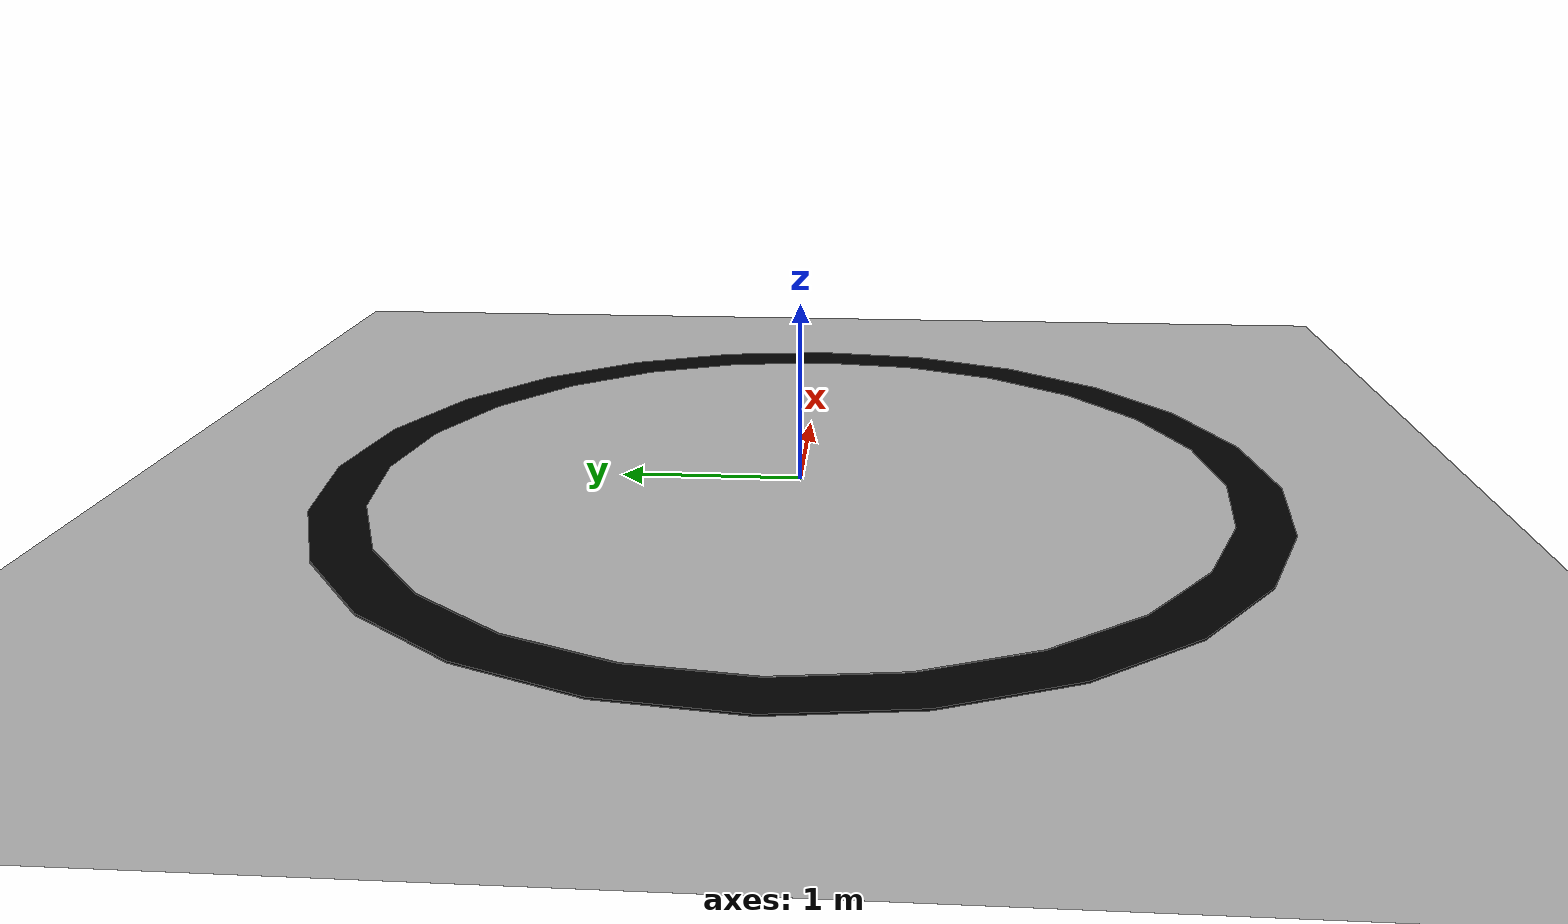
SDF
<?xml version="1.0" ?>
<sdf version="1.6">
  <world name="default">
    <include>
      <uri>model://sun</uri>
    </include>
    <model name="circular_path">
      <static>true</static>
      <link name="circular_path">
        <!-- 바닥 -->
        <visual name="base_plane">
          <geometry>
            <plane>
              <normal>0 0 1</normal>
              <size>10 10</size>
            </plane>
          </geometry>
          <material>
            <ambient>0.7 0.7 0.7 1</ambient>
            <diffuse>0.7 0.7 0.7 1</diffuse>
          </material>
        </visual>

        <!-- 원형 경로 (외부 검은 원) -->
        <visual name="outer_circle">
          <geometry>
            <cylinder>
              <radius>2.65</radius>
              <length>0.01</length>
            </cylinder>
          </geometry>
          <pose>0 0 0.005 0 0 0</pose>
          <material>
            <ambient>0 0 0 1</ambient>
            <diffuse>0 0 0 1</diffuse>
          </material>
        </visual>

        <!-- 원형 경로 (내부 회색 원 덮어쓰기) -->
        <visual name="inner_circle">
          <geometry>
            <cylinder>
              <radius>2.35</radius>
              <length>0.01</length>
            </cylinder>
          </geometry>
          <pose>0 0 0.01 0 0 0</pose>
          <material>
            <ambient>0.7 0.7 0.7 1</ambient>
            <diffuse>0.7 0.7 0.7 1</diffuse>
          </material>
        </visual>
      </link>
    </model>
  </world>
</sdf>
